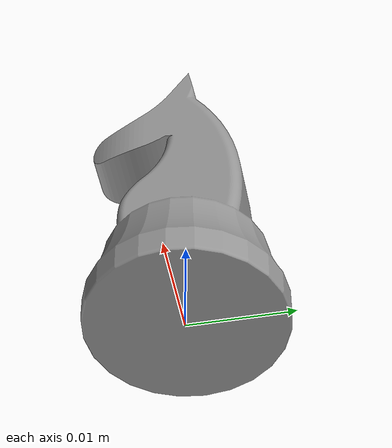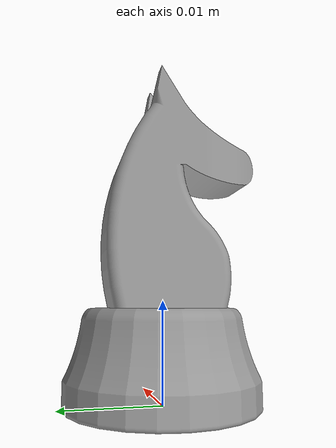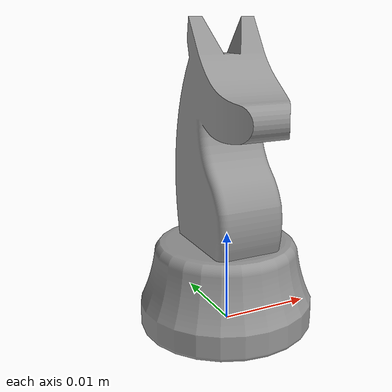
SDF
<?xml version='1.0'?>
<sdf version='1.6'>
  <model name='knight_white'>
    <static>0</static>
    <link name='link_0'>
      <inertial>
        <mass>0.01</mass>
        <inertia>
          <ixx>0.000001</ixx>
          <ixy>0</ixy>
          <ixz>0</ixz>
          <iyy>0.000001</iyy>
          <iyz>0</iyz>
          <izz>0.0000005</izz>
        </inertia>
        <pose frame=''>0 0 0 0 0 0</pose>
      </inertial>
      <gravity>1</gravity>
      <self_collide>0</self_collide>
      <kinematic>1</kinematic>
      <enable_wind>0</enable_wind>
      <visual name='visual'>
        <pose frame=''>0 0 0 0 0 0</pose>
        <geometry>
          <mesh>
            <uri>/home/david/bme_catkin_ws/src/chessboard-detector/meshes/knight.dae</uri>
            <scale>1 1 1</scale>
          </mesh>
        </geometry>
        <material>
          <lighting>1</lighting>
          <script>
            <uri>file://media/materials/scripts/gazebo.material</uri>
            <name>Gazebo/Grey</name>
          </script>
          <shader type='vertex'>
            <normal_map>__default__</normal_map>
          </shader>
          <ambient>0.9 0.9 0.9 1</ambient>
          <diffuse>0.8 0.8 0.8 1</diffuse>
          <specular>0.01 0.01 0.01 1</specular>
          <emissive>0 0 0 1</emissive>
        </material>
        <transparency>0</transparency>
        <cast_shadows>1</cast_shadows>
      </visual>
      <collision name='collision'>
        <laser_retro>0</laser_retro>
        <max_contacts>10</max_contacts>
        <pose frame=''>0 0 0.015 0 0 0</pose>
        <geometry>
          <cylinder>
            <radius>0.01</radius>
            <length>0.03</length>
          </cylinder>
        </geometry>
        <surface>
          <friction>
            <ode>
              <mu>1</mu>
              <mu2>1</mu2>
            </ode>
          </friction>
          <contact>
            <ode>
              <kp>1e+07</kp>
              <kd>1</kd>
              <max_vel>0.001</max_vel>
              <min_depth>0.1</min_depth>
            </ode>
          </contact>
        </surface>
      </collision>
    </link>
  </model>
</sdf>
